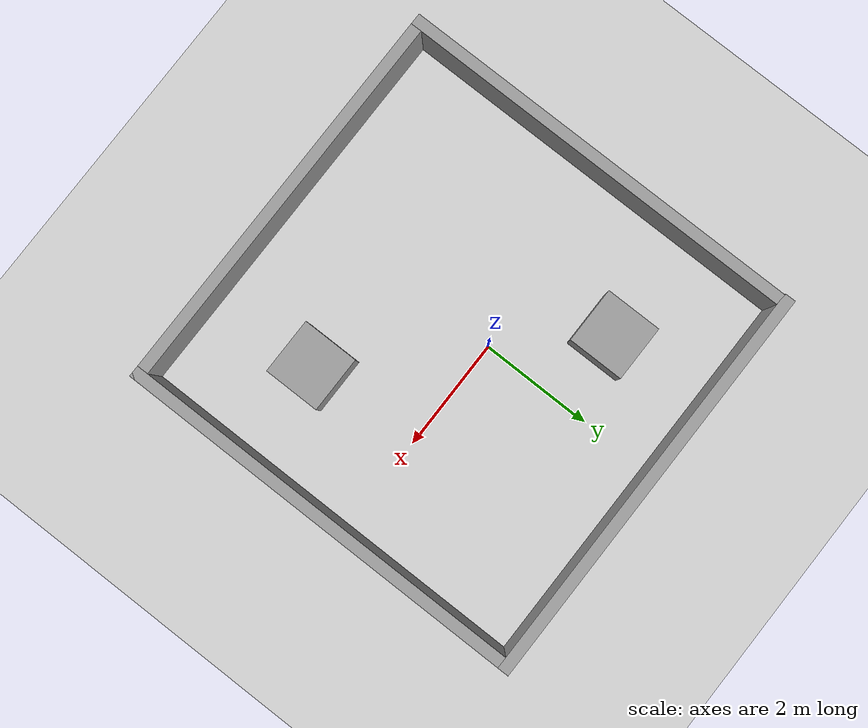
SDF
<sdf version="1.4">
 <world name="default">
  <light name="sun" type="directional">
   <pose>0 0 10 0 -0 0</pose>
   <diffuse>0.8 0.8 0.8 1</diffuse>
   <specular>0.2 0.2 0.2 1</specular>
   <attenuation>
    <range>1000</range>
    <constant>0.9</constant>
    <linear>0.01</linear>
    <quadratic>0.001</quadratic>
   </attenuation>
   <direction>-0.5 0.1 -0.9</direction>
  </light>
  <model name="ground_plane">
   <static>1</static>
   <link name="link">
    <collision name="collision">
     <geometry><plane><normal>0 0 1</normal><size>100 100</size></plane></geometry>
     <surface><friction><ode><mu>100</mu><mu2>50</mu2></ode></friction></surface>
    </collision>
    <visual name="visual">
     <cast_shadows>0</cast_shadows>
     <geometry><plane><normal>0 0 1</normal><size>100 100</size></plane></geometry>
     <material>
      <script><uri>file://media/materials/scripts/gazebo.material</uri><name>Gazebo/Grey</name></script>
     </material>
    </visual>
    <velocity_decay><linear>0</linear><angular>0</angular></velocity_decay>
   </link>
  </model>
  <physics type="ode">
   <max_step_size>0.001</max_step_size>
   <real_time_factor>1</real_time_factor>
   <real_time_update_rate>1000</real_time_update_rate>
   <gravity>0 0 -9.8</gravity>
  </physics>
  <scene><ambient>0.4 0.4 0.4 1</ambient><background>0.7 0.7 0.7 1</background><shadows>1</shadows></scene>
  <spherical_coordinates>
   <surface_model>EARTH_WGS84</surface_model>
   <latitude_deg>0</latitude_deg>
   <longitude_deg>0</longitude_deg>
   <elevation>0</elevation>
   <heading_deg>0</heading_deg>
  </spherical_coordinates>
  <model name="my_robot">
   <static>1</static>
   <link name="Wall_0">
    <collision name="Wall_0_Collision">
     <geometry><box><size>7.32 0.2 1</size></box></geometry>
     <pose>0 0 0.5 0 -0 0</pose>
    </collision>
    <visual name="Wall_0_Visual">
     <pose>0 0 0.5 0 -0 0</pose>
     <geometry><box><size>7.32 0.2 1</size></box></geometry>
     <material>
      <script><uri>file://media/materials/scripts/gazebo.material</uri><name>Gazebo/Grey</name></script>
     </material>
    </visual>
    <velocity_decay><linear>0</linear><angular>0</angular></velocity_decay>
    <pose>1.73 -0.68 0 0 -0 0</pose>
   </link>
   <link name="Wall_1">
    <collision name="Wall_1_Collision">
     <geometry><box><size>7.46839 0.2 1</size></box></geometry>
     <pose>0 0 0.5 0 -0 0</pose>
    </collision>
    <visual name="Wall_1_Visual">
     <pose>0 0 0.5 0 -0 0</pose>
     <geometry><box><size>7.46839 0.2 1</size></box></geometry>
     <material>
      <script><uri>file://media/materials/scripts/gazebo.material</uri><name>Gazebo/Grey</name></script>
     </material>
    </visual>
    <velocity_decay><linear>0</linear><angular>0</angular></velocity_decay>
    <pose>5.29 -4.3142 0 0 0 -1.5708</pose>
   </link>
   <link name="Wall_2">
    <collision name="Wall_2_Collision">
     <geometry><box><size>7.30049 0.2 1</size></box></geometry>
     <pose>0 0 0.5 0 -0 0</pose>
    </collision>
    <visual name="Wall_2_Visual">
     <pose>0 0 0.5 0 -0 0</pose>
     <geometry><box><size>7.30049 0.2 1</size></box></geometry>
     <material>
      <script><uri>file://media/materials/scripts/gazebo.material</uri><name>Gazebo/Grey</name></script>
     </material>
    </visual>
    <velocity_decay><linear>0</linear><angular>0</angular></velocity_decay>
    <pose>1.74 -7.9482 0 0 -0 3.14154</pose>
   </link>
   <link name="Wall_3">
    <collision name="Wall_3_Collision">
     <geometry><box><size>7.43591 0.2 1</size></box></geometry>
     <pose>0 0 0.5 0 -0 0</pose>
    </collision>
    <visual name="Wall_3_Visual">
     <pose>0 0 0.5 0 -0 0</pose>
     <geometry><box><size>7.43591 0.2 1</size></box></geometry>
     <material>
      <script><uri>file://media/materials/scripts/gazebo.material</uri><name>Gazebo/Grey</name></script>
     </material>
    </visual>
    <velocity_decay><linear>0</linear><angular>0</angular></velocity_decay>
    <pose>-1.81 -4.33 0 0 -0 1.5708</pose>
   </link>
   <static>1</static>
   <pose>-1.52886 3.95841 0 0 -0 0</pose>
  </model>
  <model name="unit_box_2">
   <pose>-1.34523 1.48192 0.205475 8.07794e-28 1e-06 2e-06</pose>
   <link name="link">
    <inertial>
     <mass>1</mass>
     <inertia><ixx>1</ixx><ixy>0</ixy><ixz>0</ixz><iyy>1</iyy><iyz>0</iyz><izz>1</izz></inertia>
    </inertial>
    <collision name="collision"><geometry><box><size>0.47498 0.475909 0.410949</size></box></geometry></collision>
    <visual name="visual">
     <geometry><box><size>1 1 1</size></box></geometry>
     <material>
      <script><uri>file://media/materials/scripts/gazebo.material</uri><name>Gazebo/Grey</name></script>
     </material>
    </visual>
    <velocity_decay><linear>0</linear><angular>0</angular></velocity_decay>
   </link>
   <static>0</static>
  </model>
  <model name="unit_box_3">
   <pose>2 -2 0.23205 0 -0 0</pose>
   <link name="link">
    <inertial>
     <mass>1</mass>
     <inertia><ixx>1</ixx><ixy>0</ixy><ixz>0</ixz><iyy>1</iyy><iyz>0</iyz><izz>1</izz></inertia>
    </inertial>
    <collision name="collision"><geometry><box><size>0.64314 0.57215 0.4641</size></box></geometry></collision>
    <visual name="visual">
     <geometry><box><size>1 1 1</size></box></geometry>
     <material>
      <script><uri>file://media/materials/scripts/gazebo.material</uri><name>Gazebo/Grey</name></script>
     </material>
    </visual>
    <velocity_decay><linear>0</linear><angular>0</angular></velocity_decay>
   </link>
   <static>0</static>
  </model>
 </world>
</sdf>
